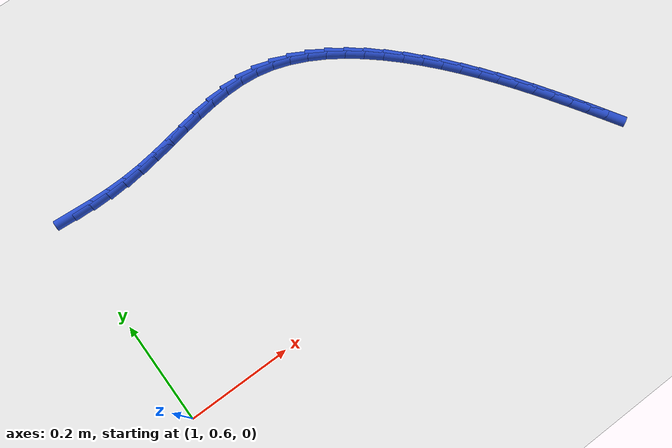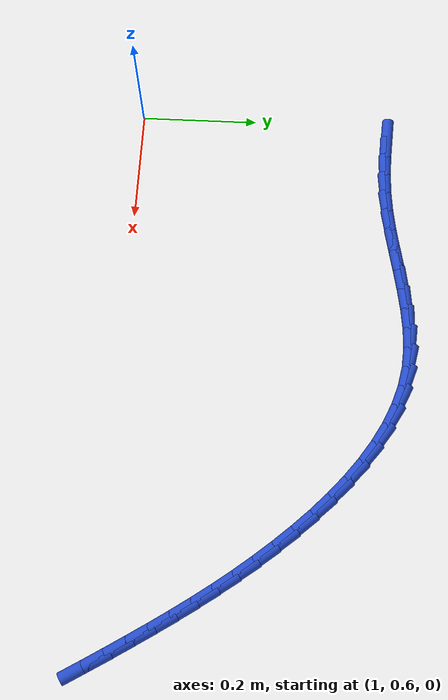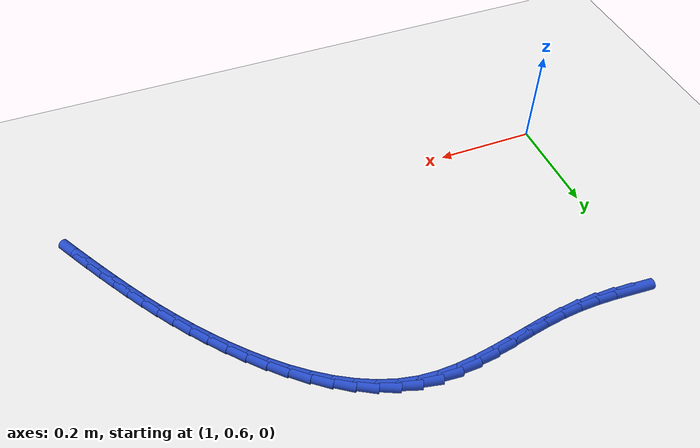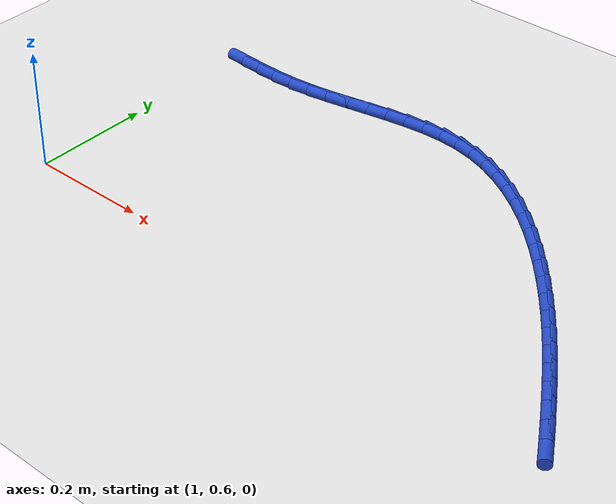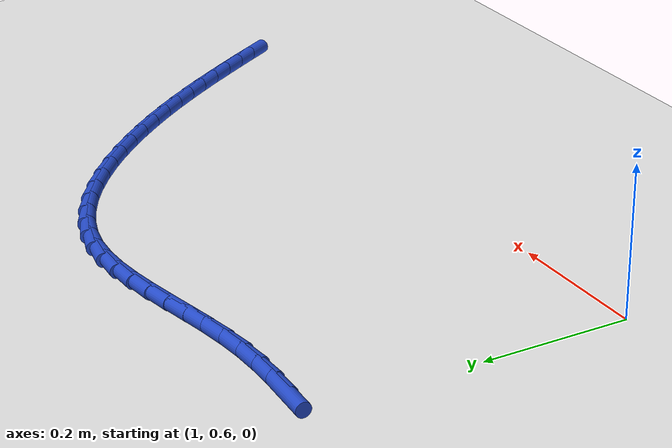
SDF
<sdf version="1.6">
 <world name="default">
  <model name="ground_plane">
   <static>1</static>
   <link name="link">
    <collision name="collision">
     <geometry><plane><normal>0 0 1</normal><size>100 100</size></plane></geometry>
     <surface><friction><ode><mu>100</mu><mu2>50</mu2></ode></friction></surface>
    </collision>
    <visual name="visual">
     <cast_shadows>0</cast_shadows>
     <geometry><plane><normal>0 0 1</normal><size>100 100</size></plane></geometry>
     <material>
      <script><uri>file://media/materials/scripts/gazebo.material</uri><name>Gazebo/WhiteGlow</name></script>
     </material>
    </visual>
   </link>
  </model>
  <model name="line">
   <link name="link_47">
    <pose>1.0346592986350442 1.0324384907906283 0.01 0 1.57 -0.06451607201602601</pose>
    <collision name="collision">
     <geometry><cylinder><radius>0.01</radius><length>0.08</length></cylinder></geometry>
    </collision>
    <visual name="visual">
     <material>
      <script><name>Gazebo/Blue</name><uri>file://media/materials/scripts/gazebo.material</uri></script>
     </material>
     <geometry><cylinder><radius>0.01</radius><length>0.08</length></cylinder></geometry>
    </visual>
   </link>
   <link name="link_48">
    <pose>1.0707498900328543 1.0301068316589612 0.01 0 1.57 -0.026843318075817264</pose>
    <collision name="collision">
     <geometry><cylinder><radius>0.01</radius><length>0.08</length></cylinder></geometry>
    </collision>
    <visual name="visual">
     <material>
      <script><name>Gazebo/Blue</name><uri>file://media/materials/scripts/gazebo.material</uri></script>
     </material>
     <geometry><cylinder><radius>0.01</radius><length>0.08</length></cylinder></geometry>
    </visual>
   </link>
   <link name="link_49">
    <pose>1.1069367811964124 1.0291352220491916 0.01 0 1.57 0.0236334024040405</pose>
    <collision name="collision">
     <geometry><cylinder><radius>0.01</radius><length>0.08</length></cylinder></geometry>
    </collision>
    <visual name="visual">
     <material>
      <script><name>Gazebo/Blue</name><uri>file://media/materials/scripts/gazebo.material</uri></script>
     </material>
     <geometry><cylinder><radius>0.01</radius><length>0.08</length></cylinder></geometry>
    </visual>
   </link>
   <link name="link_50">
    <pose>1.1432180446333882 1.0299928314227287 0.01 0 1.57 0.08557054927857073</pose>
    <collision name="collision">
     <geometry><cylinder><radius>0.01</radius><length>0.08</length></cylinder></geometry>
    </collision>
    <visual name="visual">
     <material>
      <script><name>Gazebo/Blue</name><uri>file://media/materials/scripts/gazebo.material</uri></script>
     </material>
     <geometry><cylinder><radius>0.01</radius><length>0.08</length></cylinder></geometry>
    </visual>
   </link>
   <link name="link_51">
    <pose>1.1795893372511213 1.033112761671324 0.01 0 1.57 0.14087808753635053</pose>
    <collision name="collision">
     <geometry><cylinder><radius>0.01</radius><length>0.08</length></cylinder></geometry>
    </collision>
    <visual name="visual">
     <material>
      <script><name>Gazebo/Blue</name><uri>file://media/materials/scripts/gazebo.material</uri></script>
     </material>
     <geometry><cylinder><radius>0.01</radius><length>0.08</length></cylinder></geometry>
    </visual>
   </link>
   <link name="link_52">
    <pose>1.2160026955651086 1.0382768142616234 0.01 0 1.57 0.17484324159611364</pose>
    <collision name="collision">
     <geometry><cylinder><radius>0.01</radius><length>0.08</length></cylinder></geometry>
    </collision>
    <visual name="visual">
     <material>
      <script><name>Gazebo/Blue</name><uri>file://media/materials/scripts/gazebo.material</uri></script>
     </material>
     <geometry><cylinder><radius>0.01</radius><length>0.08</length></cylinder></geometry>
    </visual>
   </link>
   <link name="link_53">
    <pose>1.2523722889411137 1.0447013924673783 0.01 0 1.57 0.18769182467498893</pose>
    <collision name="collision">
     <geometry><cylinder><radius>0.01</radius><length>0.08</length></cylinder></geometry>
    </collision>
    <visual name="visual">
     <material>
      <script><name>Gazebo/Blue</name><uri>file://media/materials/scripts/gazebo.material</uri></script>
     </material>
     <geometry><cylinder><radius>0.01</radius><length>0.08</length></cylinder></geometry>
    </visual>
   </link>
   <link name="link_54">
    <pose>1.2886110290138513 1.0515841202545013 0.01 0 1.57 0.1795650061260152</pose>
    <collision name="collision">
     <geometry><cylinder><radius>0.01</radius><length>0.08</length></cylinder></geometry>
    </collision>
    <visual name="visual">
     <material>
      <script><name>Gazebo/Blue</name><uri>file://media/materials/scripts/gazebo.material</uri></script>
     </material>
     <geometry><cylinder><radius>0.01</radius><length>0.08</length></cylinder></geometry>
    </visual>
   </link>
   <link name="link_55">
    <pose>1.3246318274180358 1.058122621588905 0.01 0 1.57 0.14983543711533862</pose>
    <collision name="collision">
     <geometry><cylinder><radius>0.01</radius><length>0.08</length></cylinder></geometry>
    </collision>
    <visual name="visual">
     <material>
      <script><name>Gazebo/Blue</name><uri>file://media/materials/scripts/gazebo.material</uri></script>
     </material>
     <geometry><cylinder><radius>0.01</radius><length>0.08</length></cylinder></geometry>
    </visual>
   </link>
   <link name="link_56">
    <pose>1.36034759578838 1.0635145204365009 0.01 0 1.57 0.09716095291829273</pose>
    <collision name="collision">
     <geometry><cylinder><radius>0.01</radius><length>0.08</length></cylinder></geometry>
    </collision>
    <visual name="visual">
     <material>
      <script><name>Gazebo/Blue</name><uri>file://media/materials/scripts/gazebo.material</uri></script>
     </material>
     <geometry><cylinder><radius>0.01</radius><length>0.08</length></cylinder></geometry>
    </visual>
   </link>
   <link name="link_57">
    <pose>1.3956712457596 1.0669574407632019 0.01 0 1.57 0.01984462726434598</pose>
    <collision name="collision">
     <geometry><cylinder><radius>0.01</radius><length>0.08</length></cylinder></geometry>
    </collision>
    <visual name="visual">
     <material>
      <script><name>Gazebo/Blue</name><uri>file://media/materials/scripts/gazebo.material</uri></script>
     </material>
     <geometry><cylinder><radius>0.01</radius><length>0.08</length></cylinder></geometry>
    </visual>
   </link>
   <link name="link_58">
    <pose>1.4305156889664097 1.0676490065349198 0.01 0 1.57 -0.08330499272874595</pose>
    <collision name="collision">
     <geometry><cylinder><radius>0.01</radius><length>0.08</length></cylinder></geometry>
    </collision>
    <visual name="visual">
     <material>
      <script><name>Gazebo/Blue</name><uri>file://media/materials/scripts/gazebo.material</uri></script>
     </material>
     <geometry><cylinder><radius>0.01</radius><length>0.08</length></cylinder></geometry>
    </visual>
   </link>
   <link name="link_59">
    <pose>1.464793837043523 1.064786841717567 0.01 0 1.57 -0.20657104194303194</pose>
    <collision name="collision">
     <geometry><cylinder><radius>0.01</radius><length>0.08</length></cylinder></geometry>
    </collision>
    <visual name="visual">
     <material>
      <script><name>Gazebo/Blue</name><uri>file://media/materials/scripts/gazebo.material</uri></script>
     </material>
     <geometry><cylinder><radius>0.01</radius><length>0.08</length></cylinder></geometry>
    </visual>
   </link>
   <link name="link_60">
    <pose>1.4984221178338086 1.0577396886436585 0.01 0 1.57 -0.3241474964615592</pose>
    <collision name="collision">
     <geometry><cylinder><radius>0.01</radius><length>0.08</length></cylinder></geometry>
    </collision>
    <visual name="visual">
     <material>
      <script><name>Gazebo/Blue</name><uri>file://media/materials/scripts/gazebo.material</uri></script>
     </material>
     <geometry><cylinder><radius>0.01</radius><length>0.08</length></cylinder></geometry>
    </visual>
   </link>
   <link name="link_61">
    <pose>1.5313335050466685 1.0466815041070565 0.01 0 1.57 -0.4279942505644177</pose>
    <collision name="collision">
     <geometry><cylinder><radius>0.01</radius><length>0.08</length></cylinder></geometry>
    </collision>
    <visual name="visual">
     <material>
      <script><name>Gazebo/Blue</name><uri>file://media/materials/scripts/gazebo.material</uri></script>
     </material>
     <geometry><cylinder><radius>0.01</radius><length>0.08</length></cylinder></geometry>
    </visual>
   </link>
   <link name="link_62">
    <pose>1.5634658347777493 1.032022875827801 0.01 0 1.57 -0.5183704773376845</pose>
    <collision name="collision">
     <geometry><cylinder><radius>0.01</radius><length>0.08</length></cylinder></geometry>
    </collision>
    <visual name="visual">
     <material>
      <script><name>Gazebo/Blue</name><uri>file://media/materials/scripts/gazebo.material</uri></script>
     </material>
     <geometry><cylinder><radius>0.01</radius><length>0.08</length></cylinder></geometry>
    </visual>
   </link>
   <link name="link_63">
    <pose>1.5947569437790723 1.0141744234687957 0.01 0 1.57 -0.5963661973946723</pose>
    <collision name="collision">
     <geometry><cylinder><radius>0.01</radius><length>0.08</length></cylinder></geometry>
    </collision>
    <visual name="visual">
     <material>
      <script><name>Gazebo/Blue</name><uri>file://media/materials/scripts/gazebo.material</uri></script>
     </material>
     <geometry><cylinder><radius>0.01</radius><length>0.08</length></cylinder></geometry>
    </visual>
   </link>
   <link name="link_64">
    <pose>1.6251446688026607 0.9935467666929443 0.01 0 1.57 -0.6634175011654742</pose>
    <collision name="collision">
     <geometry><cylinder><radius>0.01</radius><length>0.08</length></cylinder></geometry>
    </collision>
    <visual name="visual">
     <material>
      <script><name>Gazebo/Blue</name><uri>file://media/materials/scripts/gazebo.material</uri></script>
     </material>
     <geometry><cylinder><radius>0.01</radius><length>0.08</length></cylinder></geometry>
    </visual>
   </link>
   <link name="link_65">
    <pose>1.6545668466005354 0.9705505251631504 0.01 0 1.57 -0.7210009900164638</pose>
    <collision name="collision">
     <geometry><cylinder><radius>0.01</radius><length>0.08</length></cylinder></geometry>
    </collision>
    <visual name="visual">
     <material>
      <script><name>Gazebo/Blue</name><uri>file://media/materials/scripts/gazebo.material</uri></script>
     </material>
     <geometry><cylinder><radius>0.01</radius><length>0.08</length></cylinder></geometry>
    </visual>
   </link>
   <link name="link_66">
    <pose>1.6829613139247181 0.9455963185423178 0.01 0 1.57 -0.7704745533394818</pose>
    <collision name="collision">
     <geometry><cylinder><radius>0.01</radius><length>0.08</length></cylinder></geometry>
    </collision>
    <visual name="visual">
     <material>
      <script><name>Gazebo/Blue</name><uri>file://media/materials/scripts/gazebo.material</uri></script>
     </material>
     <geometry><cylinder><radius>0.01</radius><length>0.08</length></cylinder></geometry>
    </visual>
   </link>
   <link name="link_67">
    <pose>1.7102659075272315 0.9190947664933501 0.01 0 1.57 -0.8130114837493991</pose>
    <collision name="collision">
     <geometry><cylinder><radius>0.01</radius><length>0.08</length></cylinder></geometry>
    </collision>
    <visual name="visual">
     <material>
      <script><name>Gazebo/Blue</name><uri>file://media/materials/scripts/gazebo.material</uri></script>
     </material>
     <geometry><cylinder><radius>0.01</radius><length>0.08</length></cylinder></geometry>
    </visual>
   </link>
   <link name="link_68">
    <pose>1.7364184641600964 0.8914564886791505 0.01 0 1.57 -0.8495847549773512</pose>
    <collision name="collision">
     <geometry><cylinder><radius>0.01</radius><length>0.08</length></cylinder></geometry>
    </collision>
    <visual name="visual">
     <material>
      <script><name>Gazebo/Blue</name><uri>file://media/materials/scripts/gazebo.material</uri></script>
     </material>
     <geometry><cylinder><radius>0.01</radius><length>0.08</length></cylinder></geometry>
    </visual>
   </link>
   <link name="link_69">
    <pose>1.7613568205753358 0.8630921047626233 0.01 0 1.57 -0.881142298969791</pose>
    <collision name="collision">
     <geometry><cylinder><radius>0.01</radius><length>0.08</length></cylinder></geometry>
    </collision>
    <visual name="visual">
     <material>
      <script><name>Gazebo/Blue</name><uri>file://media/materials/scripts/gazebo.material</uri></script>
     </material>
     <geometry><cylinder><radius>0.01</radius><length>0.08</length></cylinder></geometry>
    </visual>
   </link>
   <link name="link_70">
    <pose>1.7850329853172557 0.8343851852936323 0.01 0 1.57 -0.9095995115521214</pose>
    <collision name="collision">
     <geometry><cylinder><radius>0.01</radius><length>0.08</length></cylinder></geometry>
    </collision>
    <visual name="visual">
     <material>
      <script><name>Gazebo/Blue</name><uri>file://media/materials/scripts/gazebo.material</uri></script>
     </material>
     <geometry><cylinder><radius>0.01</radius><length>0.08</length></cylinder></geometry>
    </visual>
   </link>
   <link name="link_71">
    <pose>1.8075293303576023 0.805470481546821 0.01 0 1.57 -0.9355253372611784</pose>
    <collision name="collision">
     <geometry><cylinder><radius>0.01</radius><length>0.08</length></cylinder></geometry>
    </collision>
    <visual name="visual">
     <material>
      <script><name>Gazebo/Blue</name><uri>file://media/materials/scripts/gazebo.material</uri></script>
     </material>
     <geometry><cylinder><radius>0.01</radius><length>0.08</length></cylinder></geometry>
    </visual>
   </link>
   <link name="link_72">
    <pose>1.8289984458975121 0.7763487221703389 0.01 0 1.57 -0.958593942592003</pose>
    <collision name="collision">
     <geometry><cylinder><radius>0.01</radius><length>0.08</length></cylinder></geometry>
    </collision>
    <visual name="visual">
     <material>
      <script><name>Gazebo/Blue</name><uri>file://media/materials/scripts/gazebo.material</uri></script>
     </material>
     <geometry><cylinder><radius>0.01</radius><length>0.08</length></cylinder></geometry>
    </visual>
   </link>
   <link name="link_73">
    <pose>1.8495936014610201 0.7470193392168464 0.01 0 1.57 -0.9785226420606887</pose>
    <collision name="collision">
     <geometry><cylinder><radius>0.01</radius><length>0.08</length></cylinder></geometry>
    </collision>
    <visual name="visual">
     <material>
      <script><name>Gazebo/Blue</name><uri>file://media/materials/scripts/gazebo.material</uri></script>
     </material>
     <geometry><cylinder><radius>0.01</radius><length>0.08</length></cylinder></geometry>
    </visual>
   </link>
   <link name="link_74">
    <pose>1.869468066572165 0.7174817647390028 0.01 0 1.57 -0.9950848318094315</pose>
    <collision name="collision">
     <geometry><cylinder><radius>0.01</radius><length>0.08</length></cylinder></geometry>
    </collision>
    <visual name="visual">
     <material>
      <script><name>Gazebo/Blue</name><uri>file://media/materials/scripts/gazebo.material</uri></script>
     </material>
     <geometry><cylinder><radius>0.01</radius><length>0.08</length></cylinder></geometry>
    </visual>
   </link>
   <link name="link_75">
    <pose>1.8887751107549846 0.6877354307894687 0.01 0 1.57 -1.0081120430420631</pose>
    <collision name="collision">
     <geometry><cylinder><radius>0.01</radius><length>0.08</length></cylinder></geometry>
    </collision>
    <visual name="visual">
     <material>
      <script><name>Gazebo/Blue</name><uri>file://media/materials/scripts/gazebo.material</uri></script>
     </material>
     <geometry><cylinder><radius>0.01</radius><length>0.08</length></cylinder></geometry>
    </visual>
   </link>
   <link name="link_76">
    <pose>1.9076680035335145 0.6577797694209045 0.01 0 1.57 -1.0174957932902071</pose>
    <collision name="collision">
     <geometry><cylinder><radius>0.01</radius><length>0.08</length></cylinder></geometry>
    </collision>
    <visual name="visual">
     <material>
      <script><name>Gazebo/Blue</name><uri>file://media/materials/scripts/gazebo.material</uri></script>
     </material>
     <geometry><cylinder><radius>0.01</radius><length>0.08</length></cylinder></geometry>
    </visual>
   </link>
   <link name="link_77">
    <pose>1.926299937012933 0.6276142007577151 0.01 0 1.57 -1.0247477678182646</pose>
    <collision name="collision">
     <geometry><cylinder><radius>0.01</radius><length>0.08</length></cylinder></geometry>
    </collision>
    <visual name="visual">
     <material>
      <script><name>Gazebo/Blue</name><uri>file://media/materials/scripts/gazebo.material</uri></script>
     </material>
     <geometry><cylinder><radius>0.01</radius><length>0.08</length></cylinder></geometry>
    </visual>
   </link>
   <link name="link_78">
    <pose>1.944764487283188 0.5972289596303455 0.01 0 1.57 -1.0342119913672487</pose>
    <collision name="collision">
     <geometry><cylinder><radius>0.01</radius><length>0.08</length></cylinder></geometry>
    </collision>
    <visual name="visual">
     <material>
      <script><name>Gazebo/Blue</name><uri>file://media/materials/scripts/gazebo.material</uri></script>
     </material>
     <geometry><cylinder><radius>0.01</radius><length>0.08</length></cylinder></geometry>
    </visual>
   </link>
  </model>
 </world>
</sdf>
